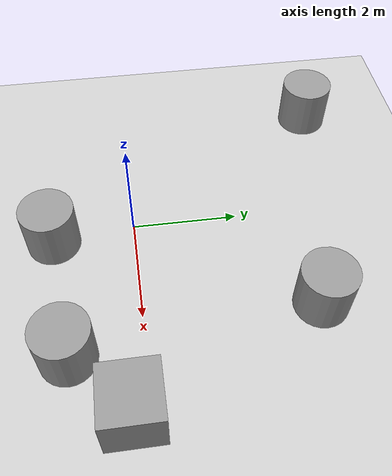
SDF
<sdf version="1.7">
 <world name="default">
  <light name="sun" type="directional">
   <pose>0 0 10 0 -0 0</pose>
   <diffuse>0.8 0.8 0.8 1</diffuse>
   <specular>0.2 0.2 0.2 1</specular>
   <attenuation>
    <range>1000</range>
    <constant>0.9</constant>
    <linear>0.01</linear>
    <quadratic>0.001</quadratic>
   </attenuation>
   <direction>-0.5 0.1 -0.9</direction>
   <spot><inner_angle>0</inner_angle><outer_angle>0</outer_angle><falloff>0</falloff></spot>
  </light>
  <model name="ground_plane">
   <static>1</static>
   <link name="link">
    <collision name="collision">
     <geometry><plane><normal>0 0 1</normal><size>100 100</size></plane></geometry>
     <surface>
      <contact><collide_bitmask>65535</collide_bitmask></contact>
      <friction><ode><mu>100</mu><mu2>50</mu2></ode></friction>
     </surface>
    </collision>
    <visual name="visual">
     <cast_shadows>0</cast_shadows>
     <geometry><plane><normal>0 0 1</normal><size>100 100</size></plane></geometry>
     <material>
      <script><uri>file://media/materials/scripts/gazebo.material</uri><name>Gazebo/Grey</name></script>
     </material>
    </visual>
   </link>
  </model>
  <physics name="default_physics" default="0" type="ode">
   <ode>
    <solver>
     <type>quick</type>
     <iters>10</iters>
     <sor>1.3</sor>
     <use_dynamic_moi_rescaling>0</use_dynamic_moi_rescaling>
    </solver>
    <constraints>
     <cfm>0</cfm>
     <erp>0.2</erp>
     <contact_max_correcting_vel>100</contact_max_correcting_vel>
     <contact_surface_layer>0.001</contact_surface_layer>
    </constraints>
   </ode>
   <max_step_size>0.004</max_step_size>
   <real_time_factor>1</real_time_factor>
   <real_time_update_rate>250</real_time_update_rate>
  </physics>
  <gravity>0 0 -9.8066</gravity>
  <magnetic_field>6e-06 2.3e-05 -4.2e-05</magnetic_field>
  <atmosphere type="adiabatic"/>
  <scene><ambient>0.4 0.4 0.4 1</ambient><background>0.7 0.7 0.7 1</background><shadows>1</shadows></scene>
  <spherical_coordinates>
   <surface_model>EARTH_WGS84</surface_model>
   <latitude_deg>0</latitude_deg>
   <longitude_deg>0</longitude_deg>
   <elevation>0</elevation>
   <heading_deg>0</heading_deg>
  </spherical_coordinates>
  <model name="unit_cylinder">
   <pose>0.191561 -1.523 0.499884 3e-06 -3e-06 -4.7e-05</pose>
   <link name="link">
    <inertial>
     <mass>1</mass>
     <inertia><ixx>0.145833</ixx><ixy>0</ixy><ixz>0</ixz><iyy>0.145833</iyy><iyz>0</iyz><izz>0.125</izz></inertia>
    </inertial>
    <collision name="collision">
     <geometry><cylinder><radius>0.5</radius><length>1</length></cylinder></geometry>
    </collision>
    <visual name="visual">
     <geometry><cylinder><radius>0.5</radius><length>1</length></cylinder></geometry>
     <material>
      <script><name>Gazebo/Grey</name><uri>file://media/materials/scripts/gazebo.material</uri></script>
     </material>
    </visual>
   </link>
  </model>
  <model name="unit_cylinder_0">
   <pose>2.61044 -1.27842 0.499972 -5.4e-05 5.5e-05 -3.7e-05</pose>
   <link name="link">
    <inertial>
     <mass>1</mass>
     <inertia><ixx>0.145833</ixx><ixy>0</ixy><ixz>0</ixz><iyy>0.145833</iyy><iyz>0</iyz><izz>0.125</izz></inertia>
    </inertial>
    <collision name="collision">
     <geometry><cylinder><radius>0.5</radius><length>1</length></cylinder></geometry>
    </collision>
    <visual name="visual">
     <geometry><cylinder><radius>0.5</radius><length>1</length></cylinder></geometry>
     <material>
      <script><name>Gazebo/Grey</name><uri>file://media/materials/scripts/gazebo.material</uri></script>
     </material>
    </visual>
   </link>
  </model>
  <model name="unit_cylinder_1">
   <pose>2.13799 3.13922 0.499885 6e-06 -1e-05 -2.8e-05</pose>
   <link name="link">
    <inertial>
     <mass>1</mass>
     <inertia><ixx>0.145833</ixx><ixy>0</ixy><ixz>0</ixz><iyy>0.145833</iyy><iyz>0</iyz><izz>0.125</izz></inertia>
    </inertial>
    <collision name="collision">
     <geometry><cylinder><radius>0.5</radius><length>1</length></cylinder></geometry>
    </collision>
    <visual name="visual">
     <geometry><cylinder><radius>0.5</radius><length>1</length></cylinder></geometry>
     <material>
      <script><name>Gazebo/Grey</name><uri>file://media/materials/scripts/gazebo.material</uri></script>
     </material>
    </visual>
   </link>
  </model>
  <model name="unit_cylinder_2">
   <pose>-2.6053 3.99057 0.5 2e-06 -0 -1.8e-05</pose>
   <link name="link">
    <inertial>
     <mass>1</mass>
     <inertia><ixx>0.145833</ixx><ixy>0</ixy><ixz>0</ixz><iyy>0.145833</iyy><iyz>0</iyz><izz>0.125</izz></inertia>
    </inertial>
    <collision name="collision">
     <geometry><cylinder><radius>0.5</radius><length>1</length></cylinder></geometry>
    </collision>
    <visual name="visual">
     <geometry><cylinder><radius>0.5</radius><length>1</length></cylinder></geometry>
     <material>
      <script><name>Gazebo/Grey</name><uri>file://media/materials/scripts/gazebo.material</uri></script>
     </material>
    </visual>
   </link>
  </model>
  <model name="unit_box">
   <pose>3.71767 -0.276708 0.5 1.7e-05 -3e-06 0</pose>
   <link name="link">
    <inertial>
     <mass>1</mass>
     <inertia>
      <ixx>0.166667</ixx>
      <ixy>0</ixy>
      <ixz>0</ixz>
      <iyy>0.166667</iyy>
      <iyz>0</iyz>
      <izz>0.166667</izz>
     </inertia>
    </inertial>
    <collision name="collision"><geometry><box><size>1 1 1</size></box></geometry></collision>
    <visual name="visual">
     <geometry><box><size>1 1 1</size></box></geometry>
     <material>
      <script><name>Gazebo/Grey</name><uri>file://media/materials/scripts/gazebo.material</uri></script>
     </material>
    </visual>
   </link>
  </model>
 </world>
</sdf>
